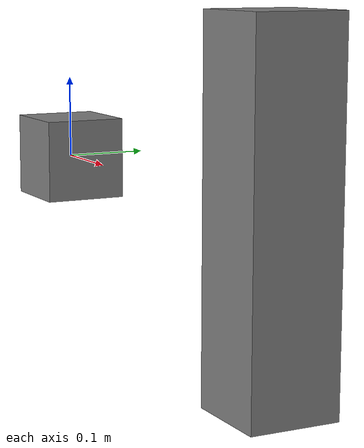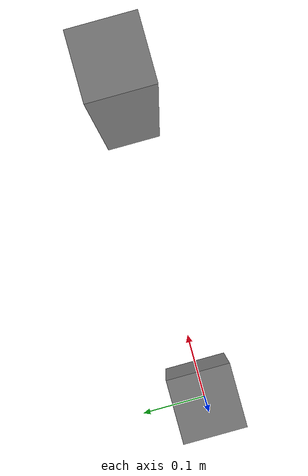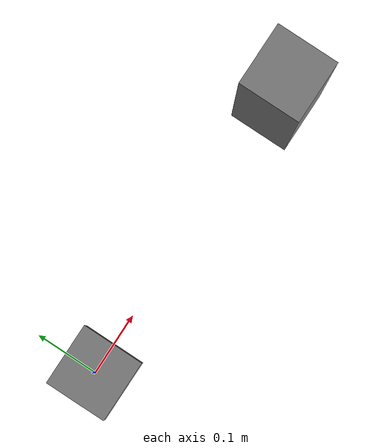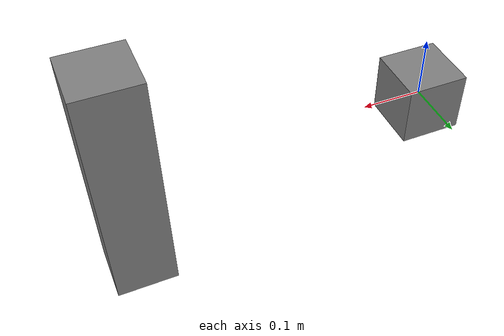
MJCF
<mujoco model="multibody">
  <worldbody>
    <body name="free_box" pos="0 0 0">
      <freejoint/>
      <geom type="box" size="0.05 0.05 0.05" mass="0.1"/>
    </body>
    <body name="static_post" pos="0.5 0 0">
      <geom type="box" size="0.05 0.05 0.2" mass="0.1"/>
    </body>
  </worldbody>
</mujoco>
